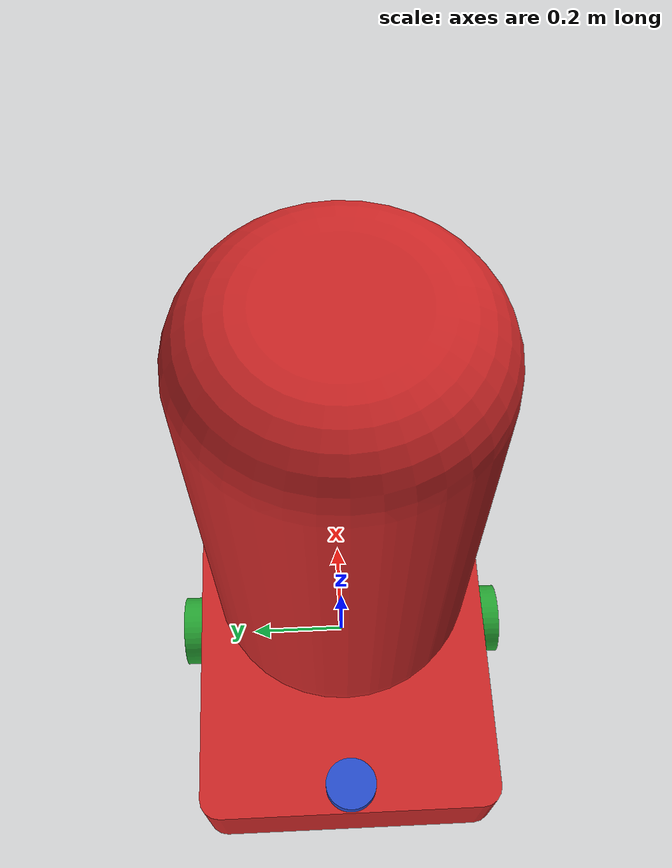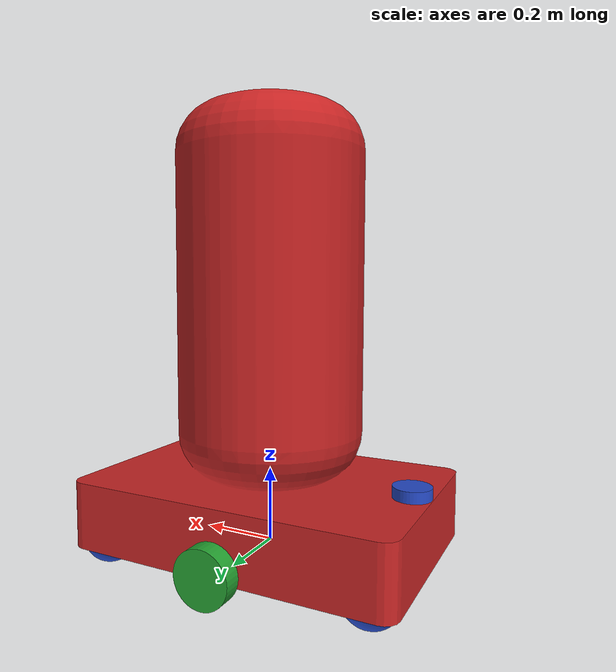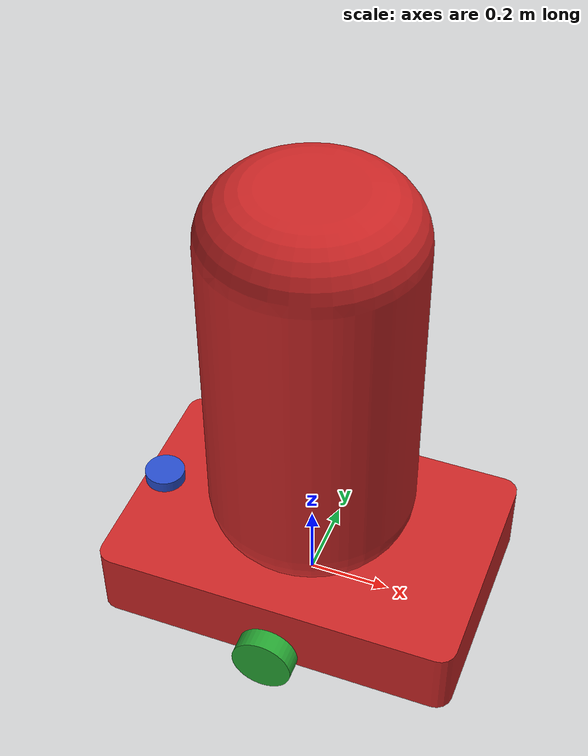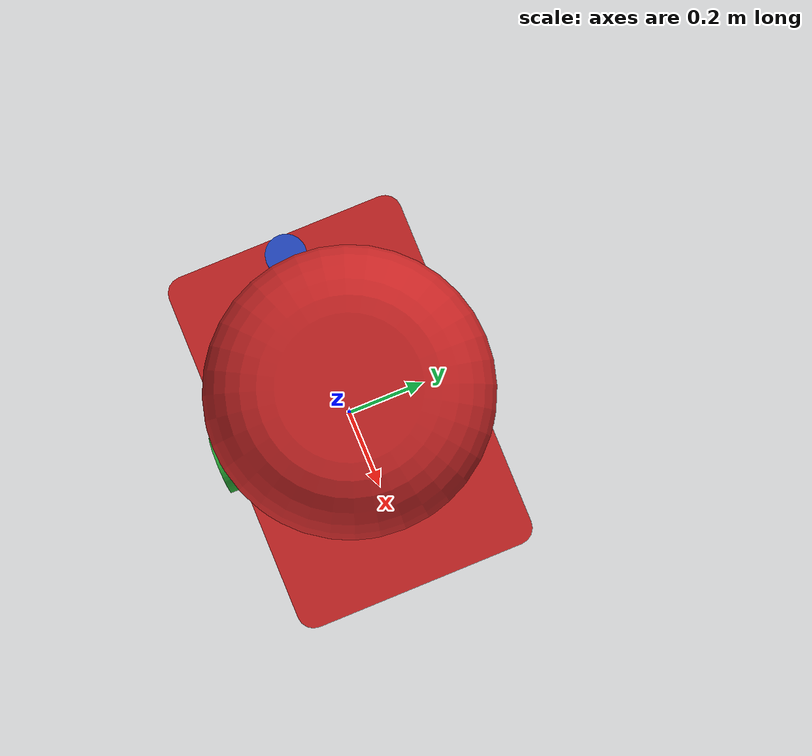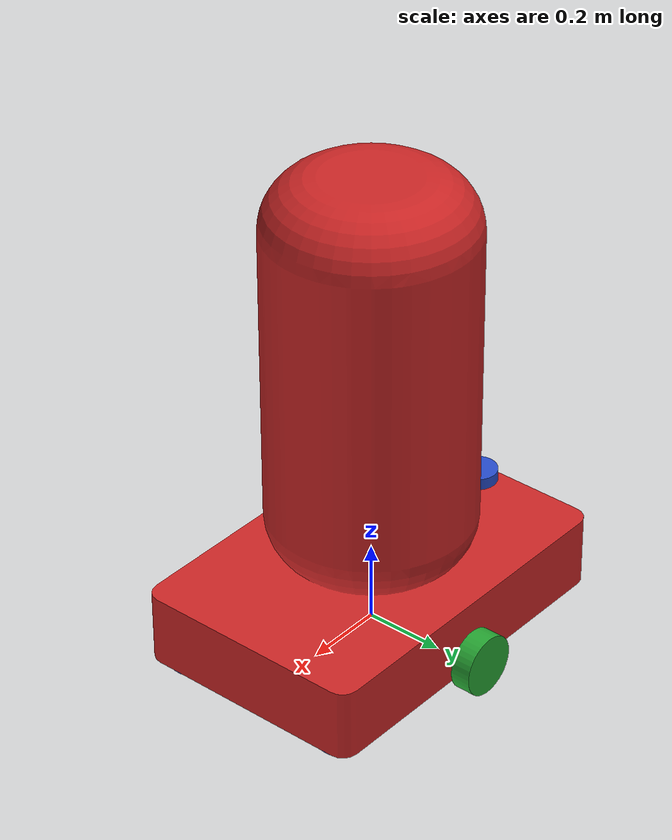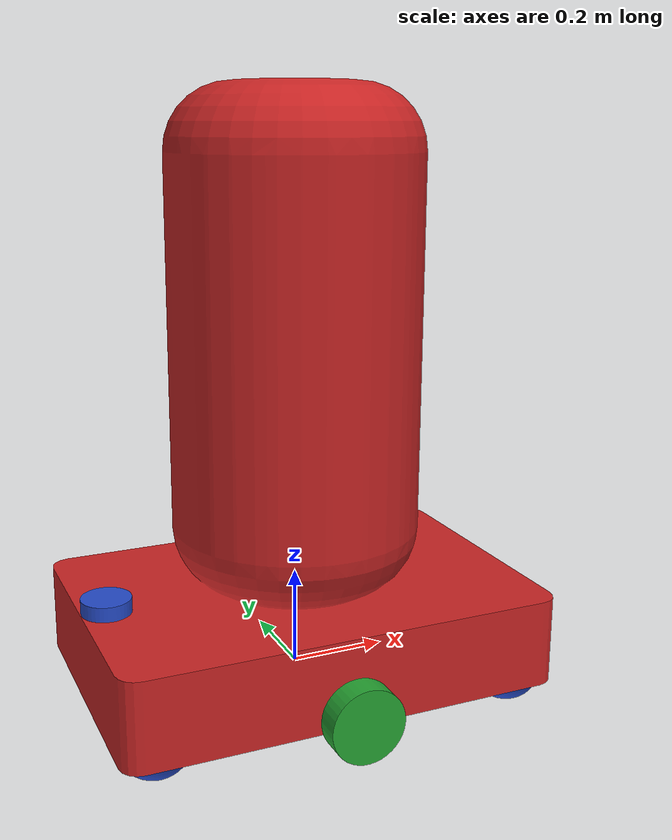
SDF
<?xml version="1.0"?>
<sdf version='1.7'>
  <model name='uvc_robot_v3'>
  <static>false</static>

  <!-- ****************** ROBOT BASE FOOTPRINT ***************************  -->
  <pose>0.0 0.0 0.0 0.0 0.0 0.0</pose>
  <link name="base_footprint"/>

  <!-- ********************* All Links ********************* -->
    <link name='base_link'>

      <inertial>
        <pose>0 0 0.479 0 0 0</pose>
      </inertial>

      <collision name='base_link_collision'>
        <pose>0 0 0 0 0 0</pose>
        <geometry>
          <mesh>
            <scale>1 1 1</scale>
            <uri>model://description/meshes/base_link.STL</uri>
          </mesh>
        </geometry>
      </collision>

      <visual name='base_link_visual'>
        <pose>0 0 0 0 0 0</pose>
        <geometry>
          <mesh>
            <scale>1 1 1</scale>
            <uri>model://description/meshes/base_link.STL</uri>
          </mesh>
        </geometry>
        <material>
          <script>
            <name>Gazebo/Red</name>
            <uri>file://media/materials/scripts/gazebo.material</uri>
          </script>
        </material>
      </visual>
    </link>

    <link name='link_left'>
      <pose relative_to='joint_left'>0 0 0 0 0 0</pose>

      <inertial>
        <pose>0 -0.025 0 0 0 0</pose>
      </inertial>

      <collision name='link_left_collision'>
        <pose>0 0 0 0 0 0</pose>
        <geometry>
          <mesh>
            <scale>1 1 1</scale>
            <uri>model://description/meshes/link_left.STL</uri>
          </mesh>
        </geometry>
      </collision>

      <visual name='link_left_visual'>
        <pose>0 0 0 0 0 0</pose>
        <geometry>
          <mesh>
            <scale>1 1 1</scale>
            <uri>model://description/meshes/link_left.STL</uri>
          </mesh>
        </geometry>
        <material>
          <script>
            <name>Gazebo/Green</name>
            <uri>file://media/materials/scripts/gazebo.material</uri>
          </script>
        </material>
      </visual>
    </link>

    <link name='link_right'>
      <pose relative_to='joint_right'>0 0 0 0 0 0</pose>

      <inertial>
        <pose>0 0.025 0 0 0 0</pose>
      </inertial>

      <collision name='link_right_collision'>
        <pose>0 0 0 0 0 0</pose>
        <geometry>
          <mesh>
            <scale>1 1 1</scale>
            <uri>model://description/meshes/link_right.STL</uri>
          </mesh>
        </geometry>
      </collision>

      <visual name='link_right_visual'>
        <pose>0 0 0 0 0 0</pose>
        <geometry>
          <mesh>
            <scale>1 1 1</scale>
            <uri>model://description/meshes/link_right.STL</uri>
          </mesh>
        </geometry>
        <material>
          <script>
            <name>Gazebo/Green</name>
            <uri>file://media/materials/scripts/gazebo.material</uri>
          </script>
        </material>
      </visual>
    </link>

    <link name='link_castor_fl'>
      <pose relative_to='joint_castor_fl'>0 0 0 0 0 0</pose>

      <inertial>
        <pose>0 -0.449 -0.018 0 0 0</pose>
      </inertial>

      <collision name='link_castor_fl_collision'>
        <pose>0 0 0 0 0 0</pose>
        <geometry>
          <mesh>
            <scale>1 1 1</scale>
            <uri>model://description/meshes/link_castor_fl.STL</uri>
          </mesh>
        </geometry>
        <surface>
          <friction>
            <ode>
              <mu>0.01</mu>
              <mu2>0.01</mu2>
              <slip1>1.0</slip1>
              <slip2>1.0</slip2>
            </ode>
          </friction>
        </surface>
      </collision>

      <visual name='link_castor_fl_visual'>
        <pose>0 0 0 0 0 0</pose>
        <geometry>
          <mesh>
            <scale>1 1 1</scale>
            <uri>model://description/meshes/link_castor_fl.STL</uri>
          </mesh>
        </geometry>
        <material>
          <script>
            <name>Gazebo/Blue</name>
            <uri>file://media/materials/scripts/gazebo.material</uri>
          </script>
        </material>
      </visual>
    </link>

    <link name='link_castor_fr'>
      <pose relative_to='joint_castor_fr'>0 0 0 0 0 0</pose>

      <inertial>
        <pose>0 0.449 -0.018 0 0 0</pose>
      </inertial>

      <collision name='link_castor_fr_collision'>
        <pose>0 0 0 0 0 0</pose>
        <geometry>
          <mesh>
            <scale>1 1 1</scale>
            <uri>model://description/meshes/link_castor_fr.STL</uri>
          </mesh>
        </geometry>
        <surface>
          <friction>
            <ode>
              <mu>0.01</mu>
              <mu2>0.01</mu2>
              <slip1>1.0</slip1>
              <slip2>1.0</slip2>
            </ode>
          </friction>
        </surface>
      </collision>

      <visual name='link_castor_fr_visual'>
        <pose>0 0 0 0 0 0</pose>
        <geometry>
          <mesh>
            <scale>1 1 1</scale>
            <uri>model://description/meshes/link_castor_fr.STL</uri>
          </mesh>
        </geometry>
        <material>
          <script>
            <name>Gazebo/Blue</name>
            <uri>file://media/materials/scripts/gazebo.material</uri>
          </script>
        </material>
      </visual>
    </link>

    <link name='link_castor_rl'>
      <pose relative_to='joint_castor_rl'>0 0 0 0 0 0</pose>

      <inertial>
        <pose>0 -0.449 -0.018 0 0 0</pose>
      </inertial>

      <collision name='link_castor_rl_collision'>
        <pose>0 0 0 0 0 0</pose>
        <geometry>
          <mesh>
            <scale>1 1 1</scale>
            <uri>model://description/meshes/link_castor_rl.STL</uri>
          </mesh>
        </geometry>
        <surface>
          <friction>
            <ode>
              <mu>0.01</mu>
              <mu2>0.01</mu2>
              <slip1>1.0</slip1>
              <slip2>1.0</slip2>
            </ode>
          </friction>
        </surface>
      </collision>

      <visual name='link_castor_rl_visual'>
        <pose>0 0 0 0 0 0</pose>
        <geometry>
          <mesh>
            <scale>1 1 1</scale>
            <uri>model://description/meshes/link_castor_rl.STL</uri>
          </mesh>
        </geometry>
        <material>
          <script>
            <name>Gazebo/Blue</name>
            <uri>file://media/materials/scripts/gazebo.material</uri>
          </script>
        </material>
      </visual>
    </link>

    <link name='link_castor_rr'>
      <pose relative_to='joint_castor_rr'>0 0 0 0 0 0</pose>

      <inertial>
        <pose>0 0.449 -0.018 0 0 0</pose>
      </inertial>

      <collision name='link_castor_rr_collision'>
        <pose>0 0 0 0 0 0</pose>
        <geometry>
          <mesh>
            <scale>1 1 1</scale>
            <uri>model://description/meshes/link_castor_rr.STL</uri>
          </mesh>
        </geometry>
        <surface>
          <friction>
            <ode>
              <mu>0.01</mu>
              <mu2>0.01</mu2>
              <slip1>1.0</slip1>
              <slip2>1.0</slip2>
            </ode>
          </friction>
        </surface>
      </collision>

      <visual name='link_castor_rr_visual'>
        <pose>0 0 0 0 0 0</pose>
        <geometry>
          <mesh>
            <scale>1 1 1</scale>
            <uri>model://description/meshes/link_castor_rr.STL</uri>
          </mesh>
        </geometry>
        <material>
          <script>
            <name>Gazebo/Blue</name>
            <uri>file://media/materials/scripts/gazebo.material</uri>
          </script>
        </material>
      </visual>
    </link>

    <link name='link_lidar'>
      <pose relative_to='joint_lidar'>0 0 0 0 0 0</pose>

      <inertial>
        <pose>0 0 -0.015 0 0 0</pose>
      </inertial>

      <collision name='link_lidar_collision'>
        <pose>0 0 0 0 0 0</pose>
        <geometry>
          <mesh>
            <scale>1 1 1</scale>
            <uri>model://description/meshes/link_lidar.STL</uri>
          </mesh>
        </geometry>
      </collision>

      <visual name='link_lidar_visual'>
        <pose>0 0 0 0 0 0</pose>
        <geometry>
          <mesh>
            <scale>1 1 1</scale>
            <uri>model://description/meshes/link_lidar.STL</uri>
          </mesh>
        </geometry>
        <material>
          <script>
            <name>Gazebo/Blue</name>
            <uri>file://media/materials/scripts/gazebo.material</uri>
          </script>
        </material>
      </visual>

      <sensor name="uvc_robot_v3_lidar" type="ray">
        <always_on>true</always_on>
        <visualize>true</visualize>
        <pose>0 0 0 0 0 0</pose>
        <update_rate>25</update_rate>
        <ray>
          <scan>
            <horizontal>
              <samples>600</samples>
              <resolution>0.500000</resolution>
              <min_angle>-2.6179917</min_angle>
              <max_angle>2.6179917</max_angle>
            </horizontal>
          </scan>
          <range>
            <min>0.100000</min>
            <max>20.000000</max>
            <resolution>0.010000</resolution>
          </range>
          <noise>
            <type>gaussian</type>
            <mean>0.0</mean>
            <stddev>0.01</stddev>
          </noise>
        </ray>
        <plugin name="uvc_robot_v3_laserscan" filename="libgazebo_ros_ray_sensor.so">
          <ros>
            <remapping>~/out:=scan</remapping>
          </ros>
          <output_type>sensor_msgs/LaserScan</output_type>
          <frame_name>lidar_frame</frame_name>
        </plugin>
      </sensor>
    </link>

  <!-- ********************* All Joints ********************* -->
  <joint name="base_joint" type="fixed">
    <pose relative_to='base_footprint'>0 0 0.075 0 0 0</pose>
    <parent>base_footprint</parent>
    <child>base_link</child>
  </joint>

    <joint name='joint_left' type='revolute'>
      <pose relative_to='base_link'>0 0.35 0.0249 0 0 0</pose>
      <parent>base_link</parent>
      <child>link_left</child>
      <axis>
        <xyz>0 -1 0</xyz>
        <limit>
          <effort>6</effort>
          <velocity>1.2</velocity>
          <lower>-1e+16</lower>
          <upper>1e+16</upper>
        </limit>
        <dynamics>
          <spring_reference>0</spring_reference>
          <spring_stiffness>0</spring_stiffness>
        </dynamics>
      </axis>
    </joint>

    <joint name='joint_right' type='revolute'>
      <pose relative_to='base_link'>0 -0.35 0.0249 0 0 0</pose>
      <parent>base_link</parent>
      <child>link_right</child>
      <axis>
        <xyz>0 -1 0</xyz>
        <limit>
          <effort>6</effort>
          <velocity>1.2</velocity>
          <lower>-1e+16</lower>
          <upper>1e+16</upper>
        </limit>
        <dynamics>
          <spring_reference>0</spring_reference>
          <spring_stiffness>0</spring_stiffness>
        </dynamics>
      </axis>
    </joint>

    <joint name='joint_castor_fl' type='fixed'>
      <pose relative_to='base_link'>-0.37307 -0.22458 0 0 0 3.1416</pose>
      <parent>base_link</parent>
      <child>link_castor_fl</child>
      <axis>
        <xyz>0 0 0</xyz>
      </axis>
    </joint>

    <joint name='joint_castor_fr' type='fixed'>
      <pose relative_to='base_link'>-0.37307 0.22458 0 0 0 3.1416</pose>
      <parent>base_link</parent>
      <child>link_castor_fr</child>
      <axis>
        <xyz>0 0 0</xyz>
      </axis>
    </joint>

    <joint name='joint_castor_rl' type='fixed'>
      <pose relative_to='base_link'>0.37307 -0.22458 0 0 0 3.1416</pose>
      <parent>base_link</parent>
      <child>link_castor_rl</child>
      <axis>
        <xyz>0 0 0</xyz>
      </axis>
    </joint>

    <joint name='joint_castor_rr' type='fixed'>
      <pose relative_to='base_link'>0.37307 0.22458 0 0 0 3.1416</pose>
      <parent>base_link</parent>
      <child>link_castor_rr</child>
      <axis>
        <xyz>0 0 0</xyz>
      </axis>
    </joint>

    <joint name='joint_lidar' type='fixed'>
      <pose relative_to='base_link'>-0.39838 -0.0006013 0.21 0 0 3.14159</pose>
      <parent>base_link</parent>
      <child>link_lidar</child>
    </joint>

  <!-- ********************* All Plugins ********************* -->
    <plugin name="uvc_robot_differential_drive_controller" filename="libgazebo_ros_diff_drive.so">
      <update_rate>10</update_rate>
      <left_joint>joint_left</left_joint>
      <right_joint>joint_right</right_joint>
      <wheel_separation>0.6</wheel_separation>
      <wheel_diameter>0.3</wheel_diameter>
      <wheel_torque>6</wheel_torque>
      <wheel_acceleration>1.0</wheel_acceleration>
      <command_topic>cmd_vel</command_topic>
      <odometry_topic>odom</odometry_topic>
      <odometry_frame>odom</odometry_frame>
      <robot_base_frame>base_footprint</robot_base_frame>
      <publish_odom>true</publish_odom>
      <publish_odom_tf>false</publish_odom_tf>
      <publish_wheel_tf>false</publish_wheel_tf>
      <!-- Odometry source, 0 for ENCODER, 1 for WORLD, defaults to WORLD -->
      <odometry_source>1</odometry_source>
    </plugin>

    <plugin name="uvc_robot_v3_joint_state" filename="libgazebo_ros_joint_state_publisher.so">
      <ros>
        <remapping>~/out:=joint_states</remapping>
      </ros>
      <update_rate>10</update_rate>
      <joint_name>joint_left</joint_name>
      <joint_name>joint_right</joint_name>
    </plugin>

  </model>
</sdf>
